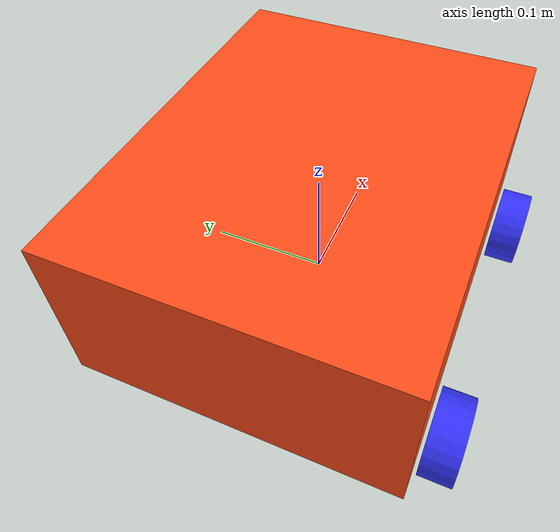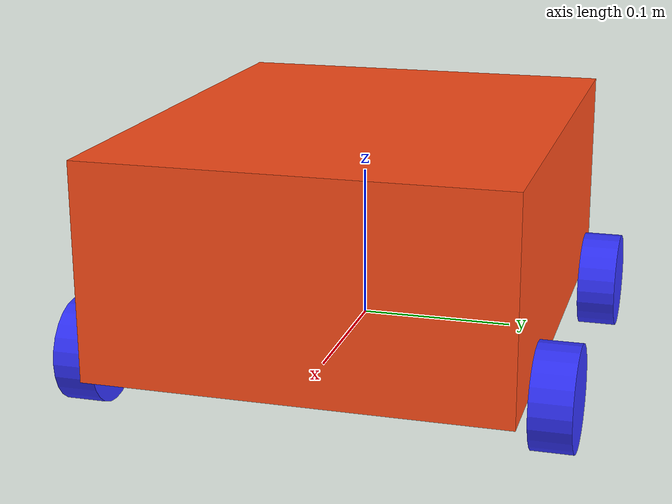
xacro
<?xml version="1.0"?>
<robot xmlns:xacro="http://www.ros.org/wiki/xacro" xmlns:ignition="http://ignitionrobotics.org/schema">
    <xacro:include filename="inertial_macros.xacro"/>
    <xacro:property name="chassis_length" value="0.335"/>
    <xacro:property name="chassis_width" value="0.265"/>
    <xacro:property name="chassis_height" value="0.138"/>
    <xacro:property name="chassis_mass" value="3.5"/>
    <xacro:property name="wheel_radius" value="0.033"/>
    <xacro:property name="wheel_thickness" value="0.026"/>
    <xacro:property name="wheel_mass" value="0.4"/>
    <xacro:property name="wheel_offset_x" value="0.113"/>
    <xacro:property name="wheel_offset_y" value="0.1485"/>
    <xacro:property name="wheel_offset_z" value="0.01"/>
    <xacro:property name="caster_wheel_radius" value="0.01"/>
    <xacro:property name="caster_wheel_mass" value="0.01"/>
    <xacro:property name="caster_wheel_offset_x" value="0.075"/>
    <xacro:property name="caster_wheel_offset_z" value="${wheel_offset_z - wheel_radius + caster_wheel_radius}"/>
    <material name="white">
        <color rgba="1 1 1 1" />
    </material>
    <material name="orange">
        <color rgba="1 0.3 0.1 1"/>
    </material>
    <material name="blue">
        <color rgba="0.2 0.2 1 1"/>
    </material>
    <material name="black">
        <color rgba="0 0 0 1"/>
    </material>
    <material name="red">
        <color rgba="1 0 0 1"/>
    </material>
    <!-- BASE LINK -->
    <link name="base_link">

    </link>
    <!-- BASE_FOOTPRINT LINK -->
    <joint name="base_footprint_joint" type="fixed">
        <parent link="base_link"/>
        <child link="base_footprint"/>
        <origin xyz="0 0 0" rpy="0 0 0"/>
    </joint>
    <link name="base_footprint">
    </link>
    <!-- BODY_LINK (wie Referenz rosbot_xl: base_link -> body_link mit Z=wheel_radius Offset) -->
    <!-- ALT: chassis_joint / chassis (asymm. Offset, Wheels an base_link) -->
    <joint name="base_to_body_joint" type="fixed">
        <parent link="base_link"/>
        <child link="body_link"/>
        <origin xyz="0.0 0.0 0.0" rpy="0.0 0.0 0.0"/>
    </joint>
    <link name="body_link">
        <visual>
            <origin xyz="0.0 0.0 ${chassis_height/2}"/>
            <geometry>
                <box size="${chassis_length} ${chassis_width} ${chassis_height}"/>
            </geometry>
            <material name="orange"/>
        </visual>
        <collision>
            <origin xyz="0.0 0.0 ${chassis_height/2}"/>
            <geometry>
                <box size="${chassis_length - 0.01} ${chassis_width - 0.01} ${chassis_height - 0.01}"/>
            </geometry>
        </collision>
        <xacro:inertial_box mass="${chassis_mass}" x="${chassis_length}" y="${chassis_width}" z="${chassis_height}">
            <origin xyz="0.0 0.0 ${chassis_height/2}" rpy="0 0 0"/>
        </xacro:inertial_box>
    </link>
    <gazebo reference="body_link">
        <material>Gazebo/Orange</material>
    </gazebo>
    <!-- IMU LINK -->
    <joint name="imu_joint" type="fixed">
        <parent link="body_link"/>
        <child link="imu_link"/>
        <origin xyz="0 0 0.05" rpy="0 0 0"/>
    </joint>
    <gazebo reference="imu_joint">
        <disableFixedJointLumping>true</disableFixedJointLumping>
    </gazebo>
    <link name="imu_link">
        <visual>
            <geometry>
                <box size="0.02 0.02 0.02"/>
            </geometry>
            <material name="black"/>
        </visual>
        <collision>
            <geometry>
                <box size="0.02 0.02 0.02"/>
            </geometry>
        </collision>
        <xacro:inertial_box mass="0.01" x="0.02" y="0.02" z="0.02">
            <origin xyz="0 0 0" rpy="0 0 0"/>
        </xacro:inertial_box>
    </link>
    <gazebo reference="imu_link">
        <material>Gazebo/Black</material>
        <!-- IMU Sensor — Ignition Fortress Konfiguration (wie Referenz rosbot_xl) -->
        <!-- ALT: Branching via use_gazebo_classic Arg + topic=imu_sensor/imu_data -->
        <sensor name="imu_sensor" type="imu">
            <always_on>true</always_on>
            <update_rate>25</update_rate>
            <visualize>false</visualize>
            <topic>imu/data_raw</topic>
            <ignition_frame_id>imu_link</ignition_frame_id>
            <enable_metrics>false</enable_metrics>
            <imu>
                <angular_velocity>
                    <x><noise type="gaussian"><mean>0.0</mean><stddev>5.24e-3</stddev><bias_mean>2.0e-3</bias_mean><bias_stddev>0.0</bias_stddev></noise></x>
                    <y><noise type="gaussian"><mean>0.0</mean><stddev>5.24e-3</stddev><bias_mean>2.0e-3</bias_mean><bias_stddev>0.0</bias_stddev></noise></y>
                    <z><noise type="gaussian"><mean>0.0</mean><stddev>5.24e-3</stddev><bias_mean>2.0e-3</bias_mean><bias_stddev>0.0</bias_stddev></noise></z>
                </angular_velocity>
                <linear_acceleration>
                    <x><noise type="gaussian"><mean>0.0</mean><stddev>1.86e-3</stddev><bias_mean>1.0e-3</bias_mean><bias_stddev>0.0</bias_stddev></noise></x>
                    <y><noise type="gaussian"><mean>0.0</mean><stddev>1.86e-3</stddev><bias_mean>1.0e-3</bias_mean><bias_stddev>0.0</bias_stddev></noise></y>
                    <z><noise type="gaussian"><mean>0.0</mean><stddev>1.86e-3</stddev><bias_mean>1.0e-3</bias_mean><bias_stddev>0.0</bias_stddev></noise></z>
                </linear_acceleration>
            </imu>
        </sensor>
    </gazebo>
    <!-- FRONT LEFT WHEEL (wie Referenz: parent=body_link, axis=Y, RPY=0) -->
    <!-- ALT: parent=base_link, rpy="-pi/2 0 0", axis="0 0 1" -->
    <joint name="front_left_wheel_joint" type="continuous">
        <parent link="body_link"/>
        <child link="left_wheel"/>
        <origin xyz="${wheel_offset_x} ${wheel_offset_y} 0.0" rpy="0.0 0.0 0.0"/>
        <axis xyz="0.0 1.0 0.0"/>
        <limit effort="1.5" velocity="30.0"/>
        <dynamics damping="0.001" friction="0.001"/>
    </joint>
    <link name="left_wheel">
        <visual>
            <geometry>
                <cylinder radius="${wheel_radius}" length="${wheel_thickness}"/>
            </geometry>
            <origin xyz="0.0 0.0 0.0" rpy="${pi/2} 0.0 0.0"/>
            <material name="blue"/>
        </visual>
        <collision>
            <geometry>
                <cylinder radius="${wheel_radius}" length="${wheel_thickness}"/>
            </geometry>
            <origin xyz="0.0 0.0 0.0" rpy="${pi/2} 0.0 0.0"/>
        </collision>
        <xacro:inertial_cylinder mass="${wheel_mass}" length="${wheel_thickness}" radius="${wheel_radius}">
            <origin xyz="0 0 0" rpy="0 0 0"/>
        </xacro:inertial_cylinder>
    </link>
    <gazebo reference="left_wheel">
        <material>Gazebo/Blue</material>
        <collision>
            <surface><friction><ode>
                <mu>0.8</mu><mu2>0.2</mu2>
                <slip1>0.035</slip1><slip2>0.0</slip2>
                <fdir1 ignition:expressed_in="base_link">1 -1 0</fdir1>
            </ode></friction></surface>
        </collision>
    </gazebo>
    <!-- FRONT RIGHT WHEEL (wie Referenz: parent=body_link, axis=Y, RPY=0) -->
    <!-- ALT: parent=base_link, rpy="pi/2 0 0", axis="0 0 -1" -->
    <joint name="front_right_wheel_joint" type="continuous">
        <parent link="body_link"/>
        <child link="right_wheel"/>
        <origin xyz="${wheel_offset_x} ${-wheel_offset_y} 0.0" rpy="0.0 0.0 0.0"/>
        <axis xyz="0.0 1.0 0.0"/>
        <limit effort="1.5" velocity="30.0"/>
        <dynamics damping="0.001" friction="0.001"/>
    </joint>
    <link name="right_wheel">
        <visual>
            <geometry>
                <cylinder radius="${wheel_radius}" length="${wheel_thickness}"/>
            </geometry>
            <origin xyz="0.0 0.0 0.0" rpy="${pi/2} 0.0 0.0"/>
            <material name="blue"/>
        </visual>
        <collision>
            <geometry>
                <cylinder radius="${wheel_radius}" length="${wheel_thickness}"/>
            </geometry>
            <origin xyz="0.0 0.0 0.0" rpy="${pi/2} 0.0 0.0"/>
        </collision>
        <xacro:inertial_cylinder mass="${wheel_mass}" length="${wheel_thickness}" radius="${wheel_radius}">
            <origin xyz="0 0 0" rpy="0 0 0"/>
        </xacro:inertial_cylinder>
    </link>
    <gazebo reference="right_wheel">
        <material>Gazebo/Blue</material>
        <collision>
            <surface><friction><ode>
                <mu>0.8</mu><mu2>0.2</mu2>
                <slip1>0.035</slip1><slip2>0.0</slip2>
                <fdir1 ignition:expressed_in="base_link">1 1 0</fdir1>
            </ode></friction></surface>
        </collision>
    </gazebo>
    <!-- REAR WHEELS (wie Referenz: parent=body_link, axis=Y, RPY=0) -->
    <!-- REAR LEFT WHEEL -->
    <!-- ALT: parent=base_link, rpy="-pi/2 0 0", axis="0 0 1" -->
    <joint name="rear_left_wheel_joint" type="continuous">
        <parent link="body_link"/>
        <child link="rear_left_wheel"/>
        <origin xyz="${-wheel_offset_x} ${wheel_offset_y} 0.0" rpy="0.0 0.0 0.0"/>
        <axis xyz="0.0 1.0 0.0"/>
        <limit effort="1.5" velocity="30.0"/>
        <dynamics damping="0.001" friction="0.001"/>
    </joint>
    <link name="rear_left_wheel">
        <visual>
            <geometry>
                <cylinder radius="${wheel_radius}" length="${wheel_thickness}"/>
            </geometry>
            <origin xyz="0.0 0.0 0.0" rpy="${pi/2} 0.0 0.0"/>
            <material name="blue"/>
        </visual>
        <collision>
            <geometry>
                <cylinder radius="${wheel_radius}" length="${wheel_thickness}"/>
            </geometry>
            <origin xyz="0.0 0.0 0.0" rpy="${pi/2} 0.0 0.0"/>
        </collision>
        <xacro:inertial_cylinder mass="${wheel_mass}" length="${wheel_thickness}" radius="${wheel_radius}">
            <origin xyz="0 0 0" rpy="0 0 0"/>
        </xacro:inertial_cylinder>
    </link>
    <gazebo reference="rear_left_wheel">
        <material>Gazebo/Blue</material>
        <collision>
            <surface><friction><ode>
                <mu>0.8</mu><mu2>0.2</mu2>
                <slip1>0.035</slip1><slip2>0.0</slip2>
                <fdir1 ignition:expressed_in="base_link">1 1 0</fdir1>
            </ode></friction></surface>
        </collision>
    </gazebo>

    <!-- REAR RIGHT WHEEL -->
    <!-- ALT: parent=base_link, rpy="pi/2 0 0", axis="0 0 -1" -->
    <joint name="rear_right_wheel_joint" type="continuous">
        <parent link="body_link"/>
        <child link="rear_right_wheel"/>
        <origin xyz="${-wheel_offset_x} ${-wheel_offset_y} 0.0" rpy="0.0 0.0 0.0"/>
        <axis xyz="0.0 1.0 0.0"/>
        <limit effort="1.5" velocity="30.0"/>
        <dynamics damping="0.001" friction="0.001"/>
    </joint>
    <link name="rear_right_wheel">
        <visual>
            <geometry>
                <cylinder radius="${wheel_radius}" length="${wheel_thickness}"/>
            </geometry>
            <origin xyz="0.0 0.0 0.0" rpy="${pi/2} 0.0 0.0"/>
            <material name="blue"/>
        </visual>
        <collision>
            <geometry>
                <cylinder radius="${wheel_radius}" length="${wheel_thickness}"/>
            </geometry>
            <origin xyz="0.0 0.0 0.0" rpy="${pi/2} 0.0 0.0"/>
        </collision>
        <xacro:inertial_cylinder mass="${wheel_mass}" length="${wheel_thickness}" radius="${wheel_radius}">
            <origin xyz="0 0 0" rpy="0 0 0"/>
        </xacro:inertial_cylinder>
    </link>
    <gazebo reference="rear_right_wheel">
        <material>Gazebo/Blue</material>
        <collision>
            <surface><friction><ode>
                <mu>0.8</mu><mu2>0.2</mu2>
                <slip1>0.035</slip1><slip2>0.0</slip2>
                <fdir1 ignition:expressed_in="base_link">1 -1 0</fdir1>
            </ode></friction></surface>
        </collision>
    </gazebo>
</robot>

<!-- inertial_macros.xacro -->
<robot xmlns:xacro="http://www.ros.org/wiki/xacro" >
    <xacro:macro name="inertial_sphere" params="mass radius *origin">
        <inertial>
            <xacro:insert_block name="origin"/>
            <mass value="${mass}" />
            <inertia ixx="${(2/5) * mass * (radius*radius)}" ixy="0.0" ixz="0.0"
                    iyy="${(2/5) * mass * (radius*radius)}" iyz="0.0"
                    izz="${(2/5) * mass * (radius*radius)}" />
        </inertial>
    </xacro:macro>
    <xacro:macro name="inertial_box" params="mass x y z *origin">
        <inertial>
            <xacro:insert_block name="origin"/>
            <mass value="${mass}" />
            <inertia ixx="${(1/12) * mass * (y*y+z*z)}" ixy="0.0" ixz="0.0"
                    iyy="${(1/12) * mass * (x*x+z*z)}" iyz="0.0"
                    izz="${(1/12) * mass * (x*x+y*y)}" />
        </inertial>
    </xacro:macro>
    <xacro:macro name="inertial_cylinder" params="mass length radius *origin">
        <inertial>
            <xacro:insert_block name="origin"/>
            <mass value="${mass}" />
            <inertia ixx="${(1/12) * mass * (3*radius*radius + length*length)}" ixy="0.0" ixz="0.0"
                    iyy="${(1/12) * mass * (3*radius*radius + length*length)}" iyz="0.0"
                    izz="${(1/2) * mass * (radius*radius)}" />
        </inertial>
    </xacro:macro>
</robot>
